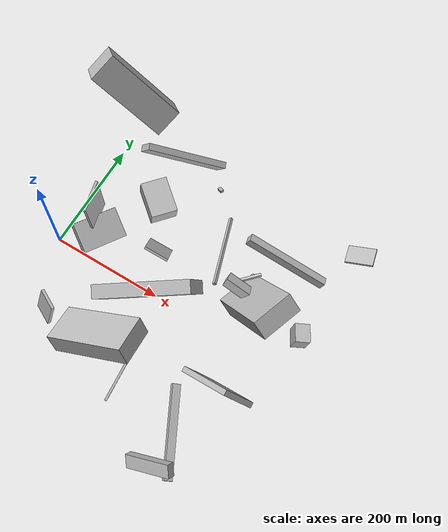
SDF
<sdf version="1.6">
 <world name="default">
  <scene>
   <sky><clouds><speed>12</speed></clouds></sky>
   <ambient>0.4 0.4 0.4 1</ambient>
   <background>0.7 0.7 0.7 1</background>
   <shadows>1</shadows>
  </scene>
  <gravity>0 0 -9.8066</gravity>
  <magnetic_field>6e-06 2.3e-05 -4.2e-05</magnetic_field>
  <physics default="0" name="default_physics" type="ode">
   <ode>
    <solver>
     <type>quick</type>
     <iters>10</iters>
     <sor>1.0</sor>
     <use_dynamic_moi_rescaling>0</use_dynamic_moi_rescaling>
    </solver>
    <constraints>
     <cfm>0</cfm>
     <erp>0.2</erp>
     <contact_max_correcting_vel>100</contact_max_correcting_vel>
     <contact_surface_layer>0.001</contact_surface_layer>
    </constraints>
   </ode>
   <max_step_size>0.004</max_step_size>
   <real_time_factor>1</real_time_factor>
   <real_time_update_rate>250</real_time_update_rate>
  </physics>
  <light name="sun" type="directional">
   <pose>0 0 10 0 0 0</pose>
   <diffuse>0.8 0.8 0.8 1</diffuse>
   <specular>0.2 0.2 0.2 1</specular>
   <attenuation>
    <range>1000</range>
    <constant>0.9</constant>
    <linear>0.01</linear>
    <quadratic>0.001</quadratic>
   </attenuation>
   <direction>-0.5 0.1 -0.9</direction>
  </light>
  <model name="building_1">
   <static>0</static>
   <pose>228.50782712403145 -99.7069918311399 80.58001226293052 -2.600759875775554 -0.9914145633186701 2.7520723081780076</pose>
   <link name="link">
    <gravity>0</gravity>
    <pose>0 0 75.0 0 0 0</pose>
    <collision name="collision"><geometry><box><size>34 67 150</size></box></geometry></collision>
    <visual name="visual">
     <cast_shadows>0</cast_shadows>
     <geometry><box><size>34 67 150</size></box></geometry>
     <material>
      <script>
       <uri>model://HANNAS_wall/materials/scripts</uri>
       <uri>model://HANNAS_wall/materials/textures</uri>
       <name>vrc/HANNAS_wall</name>
      </script>
     </material>
    </visual>
   </link>
  </model>
  <model name="building_2">
   <static>0</static>
   <pose>313.12523808422543 -114.09309398574526 26.935028764033515 1.6852489154991435 -1.1314976388735776 0.3692323295738032</pose>
   <link name="link">
    <gravity>0</gravity>
    <pose>0 0 75.0 0 0 0</pose>
    <collision name="collision"><geometry><box><size>8 14 150</size></box></geometry></collision>
    <visual name="visual">
     <cast_shadows>0</cast_shadows>
     <geometry><box><size>8 14 150</size></box></geometry>
     <material>
      <script>
       <uri>model://HANNAS_wall/materials/scripts</uri>
       <uri>model://HANNAS_wall/materials/textures</uri>
       <name>vrc/HANNAS_wall</name>
      </script>
     </material>
    </visual>
   </link>
  </model>
  <model name="building_3">
   <static>0</static>
   <pose>402.136044863617 46.29176534728611 96.78624098116423 3.0613290632788126 -0.6936211254072625 2.852033277978996</pose>
   <link name="link">
    <gravity>0</gravity>
    <pose>0 0 70.0 0 0 0</pose>
    <collision name="collision"><geometry><box><size>35 73 140</size></box></geometry></collision>
    <visual name="visual">
     <cast_shadows>0</cast_shadows>
     <geometry><box><size>35 73 140</size></box></geometry>
     <material>
      <script>
       <uri>model://HANNAS_wall/materials/scripts</uri>
       <uri>model://HANNAS_wall/materials/textures</uri>
       <name>vrc/HANNAS_wall</name>
      </script>
     </material>
    </visual>
   </link>
  </model>
  <model name="building_4">
   <static>0</static>
   <pose>53.97638780549188 72.35365126070106 118.19536404606004 2.5392077078129356 -1.35794974537868 -0.7713836601714082</pose>
   <link name="link">
    <gravity>0</gravity>
    <pose>0 0 25.0 0 0 0</pose>
    <collision name="collision"><geometry><box><size>150 4 50</size></box></geometry></collision>
    <visual name="visual">
     <cast_shadows>0</cast_shadows>
     <geometry><box><size>150 4 50</size></box></geometry>
     <material>
      <script>
       <uri>model://HANNAS_wall/materials/scripts</uri>
       <uri>model://HANNAS_wall/materials/textures</uri>
       <name>vrc/HANNAS_wall</name>
      </script>
     </material>
    </visual>
   </link>
  </model>
  <model name="building_5">
   <static>0</static>
   <pose>110.29068994062796 139.5535475372522 95.32020127405234 1.7199619675158766 0.06869982871447372 0.8920822855806897</pose>
   <link name="link">
    <gravity>0</gravity>
    <pose>0 0 30.0 0 0 0</pose>
    <collision name="collision"><geometry><box><size>44 33 60</size></box></geometry></collision>
    <visual name="visual">
     <cast_shadows>0</cast_shadows>
     <geometry><box><size>44 33 60</size></box></geometry>
     <material>
      <script>
       <uri>model://HANNAS_wall/materials/scripts</uri>
       <uri>model://HANNAS_wall/materials/textures</uri>
       <name>vrc/HANNAS_wall</name>
      </script>
     </material>
    </visual>
   </link>
  </model>
  <model name="building_6">
   <static>0</static>
   <pose>346.4212791652003 -248.26852292374633 52.10722650439477 -2.4630711130093834 0.537393049107994 -0.9527748149124886</pose>
   <link name="link">
    <gravity>0</gravity>
    <pose>0 0 6.5 0 0 0</pose>
    <collision name="collision"><geometry><box><size>22 85 13</size></box></geometry></collision>
    <visual name="visual">
     <cast_shadows>0</cast_shadows>
     <geometry><box><size>22 85 13</size></box></geometry>
     <material>
      <script>
       <uri>model://HANNAS_wall/materials/scripts</uri>
       <uri>model://HANNAS_wall/materials/textures</uri>
       <name>vrc/HANNAS_wall</name>
      </script>
     </material>
    </visual>
   </link>
  </model>
  <model name="building_7">
   <static>0</static>
   <pose>255.9798584550856 121.88669110989943 22.419570511178264 -0.8163161030855242 -0.2620827699031319 -1.2369061661339473</pose>
   <link name="link">
    <gravity>0</gravity>
    <pose>0 0 2.5 0 0 0</pose>
    <collision name="collision"><geometry><box><size>143 5 5</size></box></geometry></collision>
    <visual name="visual">
     <cast_shadows>0</cast_shadows>
     <geometry><box><size>143 5 5</size></box></geometry>
     <material>
      <script>
       <uri>model://HANNAS_wall/materials/scripts</uri>
       <uri>model://HANNAS_wall/materials/textures</uri>
       <name>vrc/HANNAS_wall</name>
      </script>
     </material>
    </visual>
   </link>
  </model>
  <model name="building_8">
   <static>0</static>
   <pose>181.7643777014365 243.1240095132053 60.532595841608476 -0.9611370804678414 -0.28435300090438953 1.9959883724791074</pose>
   <link name="link">
    <gravity>0</gravity>
    <pose>0 0 75.0 0 0 0</pose>
    <collision name="collision"><geometry><box><size>11 26 150</size></box></geometry></collision>
    <visual name="visual">
     <cast_shadows>0</cast_shadows>
     <geometry><box><size>11 26 150</size></box></geometry>
     <material>
      <script>
       <uri>model://HANNAS_wall/materials/scripts</uri>
       <uri>model://HANNAS_wall/materials/textures</uri>
       <name>vrc/HANNAS_wall</name>
      </script>
     </material>
    </visual>
   </link>
  </model>
  <model name="building_9">
   <static>0</static>
   <pose>341.33442893834876 -95.42093223972688 84.00855173920348 0.918548454759484 -0.23391376021368226 1.62346876505583</pose>
   <link name="link">
    <gravity>0</gravity>
    <pose>0 0 49.5 0 0 0</pose>
    <collision name="collision"><geometry><box><size>9 64 99</size></box></geometry></collision>
    <visual name="visual">
     <cast_shadows>0</cast_shadows>
     <geometry><box><size>9 64 99</size></box></geometry>
     <material>
      <script>
       <uri>model://HANNAS_wall/materials/scripts</uri>
       <uri>model://HANNAS_wall/materials/textures</uri>
       <name>vrc/HANNAS_wall</name>
      </script>
     </material>
    </visual>
   </link>
  </model>
  <model name="building_10">
   <static>0</static>
   <pose>88.02222566278614 -132.79844264237286 111.608320470754 1.9352595335587857 0.05338457157055781 2.657418977662906</pose>
   <link name="link">
    <gravity>0</gravity>
    <pose>0 0 2.5 0 0 0</pose>
    <collision name="collision"><geometry><box><size>36 46 5</size></box></geometry></collision>
    <visual name="visual">
     <cast_shadows>0</cast_shadows>
     <geometry><box><size>36 46 5</size></box></geometry>
     <material>
      <script>
       <uri>model://HANNAS_wall/materials/scripts</uri>
       <uri>model://HANNAS_wall/materials/textures</uri>
       <name>vrc/HANNAS_wall</name>
      </script>
     </material>
    </visual>
   </link>
  </model>
  <model name="building_11">
   <static>0</static>
   <pose>44.027773177893515 5.0575185023741795 49.42530432796817 1.7709122891077063 -0.4515891867583405 2.545409864224229</pose>
   <link name="link">
    <gravity>0</gravity>
    <pose>0 0 39.0 0 0 0</pose>
    <collision name="collision"><geometry><box><size>52 16 78</size></box></geometry></collision>
    <visual name="visual">
     <cast_shadows>0</cast_shadows>
     <geometry><box><size>52 16 78</size></box></geometry>
     <material>
      <script>
       <uri>model://HANNAS_wall/materials/scripts</uri>
       <uri>model://HANNAS_wall/materials/textures</uri>
       <name>vrc/HANNAS_wall</name>
      </script>
     </material>
    </visual>
   </link>
  </model>
  <model name="building_12">
   <static>0</static>
   <pose>67.06799422432665 250.13825604162693 107.78234544310416 0.6080024797891269 -0.6131174353864547 -0.732181633045821</pose>
   <link name="link">
    <gravity>0</gravity>
    <pose>0 0 75.0 0 0 0</pose>
    <collision name="collision"><geometry><box><size>47 51 150</size></box></geometry></collision>
    <visual name="visual">
     <cast_shadows>0</cast_shadows>
     <geometry><box><size>47 51 150</size></box></geometry>
     <material>
      <script>
       <uri>model://HANNAS_wall/materials/scripts</uri>
       <uri>model://HANNAS_wall/materials/textures</uri>
       <name>vrc/HANNAS_wall</name>
      </script>
     </material>
    </visual>
   </link>
  </model>
  <model name="building_13">
   <static>0</static>
   <pose>450.89568678619605 46.708728996921856 24.26360137458855 1.5711208680672 -0.15874952512519347 -2.627180981603595</pose>
   <link name="link">
    <gravity>0</gravity>
    <pose>0 0 15.5 0 0 0</pose>
    <collision name="collision"><geometry><box><size>25 33 31</size></box></geometry></collision>
    <visual name="visual">
     <cast_shadows>0</cast_shadows>
     <geometry><box><size>25 33 31</size></box></geometry>
     <material>
      <script>
       <uri>model://HANNAS_wall/materials/scripts</uri>
       <uri>model://HANNAS_wall/materials/textures</uri>
       <name>vrc/HANNAS_wall</name>
      </script>
     </material>
    </visual>
   </link>
  </model>
  <model name="building_14">
   <static>0</static>
   <pose>317.1735899150382 67.17059370604062 43.347329830076596 2.266013755968405 -0.25390237408581684 3.1183021209331523</pose>
   <link name="link">
    <gravity>0</gravity>
    <pose>0 0 11.5 0 0 0</pose>
    <collision name="collision"><geometry><box><size>47 15 23</size></box></geometry></collision>
    <visual name="visual">
     <cast_shadows>0</cast_shadows>
     <geometry><box><size>47 15 23</size></box></geometry>
     <material>
      <script>
       <uri>model://HANNAS_wall/materials/scripts</uri>
       <uri>model://HANNAS_wall/materials/textures</uri>
       <name>vrc/HANNAS_wall</name>
      </script>
     </material>
    </visual>
   </link>
  </model>
  <model name="building_15">
   <static>0</static>
   <pose>219.2940224385432 -35.968448894294745 120.79965588039174 -0.4466902117037907 1.2109556470688532 1.7004328098507662</pose>
   <link name="link">
    <gravity>0</gravity>
    <pose>0 0 11.0 0 0 0</pose>
    <collision name="collision"><geometry><box><size>116 150 22</size></box></geometry></collision>
    <visual name="visual">
     <cast_shadows>0</cast_shadows>
     <geometry><box><size>116 150 22</size></box></geometry>
     <material>
      <script>
       <uri>model://HANNAS_wall/materials/scripts</uri>
       <uri>model://HANNAS_wall/materials/textures</uri>
       <name>vrc/HANNAS_wall</name>
      </script>
     </material>
    </visual>
   </link>
  </model>
  <model name="building_16">
   <static>0</static>
   <pose>441.06277340463515 224.3664450234985 31.010697842190375 -0.24457769622625597 1.2611237183024624 0.0016295258715697029</pose>
   <link name="link">
    <gravity>0</gravity>
    <pose>0 0 24.0 0 0 0</pose>
    <collision name="collision"><geometry><box><size>4 32 48</size></box></geometry></collision>
    <visual name="visual">
     <cast_shadows>0</cast_shadows>
     <geometry><box><size>4 32 48</size></box></geometry>
     <material>
      <script>
       <uri>model://HANNAS_wall/materials/scripts</uri>
       <uri>model://HANNAS_wall/materials/textures</uri>
       <name>vrc/HANNAS_wall</name>
      </script>
     </material>
    </visual>
   </link>
  </model>
  <model name="building_17">
   <static>0</static>
   <pose>362.18698899260363 155.252044252369 56.23155189251884 -0.965939377537175 1.0504283608739686 -2.333364380576161</pose>
   <link name="link">
    <gravity>0</gravity>
    <pose>0 0 7.0 0 0 0</pose>
    <collision name="collision"><geometry><box><size>14 150 14</size></box></geometry></collision>
    <visual name="visual">
     <cast_shadows>0</cast_shadows>
     <geometry><box><size>14 150 14</size></box></geometry>
     <material>
      <script>
       <uri>model://HANNAS_wall/materials/scripts</uri>
       <uri>model://HANNAS_wall/materials/textures</uri>
       <name>vrc/HANNAS_wall</name>
      </script>
     </material>
    </visual>
   </link>
  </model>
  <model name="building_18">
   <static>0</static>
   <pose>169.0174177719099 52.121954846321074 43.41908097750597 -2.84924875622959 -0.5826497848571008 1.4866457331929281</pose>
   <link name="link">
    <gravity>0</gravity>
    <pose>0 0 30.5 0 0 0</pose>
    <collision name="collision"><geometry><box><size>4 44 61</size></box></geometry></collision>
    <visual name="visual">
     <cast_shadows>0</cast_shadows>
     <geometry><box><size>4 44 61</size></box></geometry>
     <material>
      <script>
       <uri>model://HANNAS_wall/materials/scripts</uri>
       <uri>model://HANNAS_wall/materials/textures</uri>
       <name>vrc/HANNAS_wall</name>
      </script>
     </material>
    </visual>
   </link>
  </model>
  <model name="building_19">
   <static>0</static>
   <pose>335.6860706112411 117.35383986724317 28.157870549528237 1.9791957072682593 1.3185359518563284 -0.3817139348526188</pose>
   <link name="link">
    <gravity>0</gravity>
    <pose>0 0 25.0 0 0 0</pose>
    <collision name="collision"><geometry><box><size>4 5 50</size></box></geometry></collision>
    <visual name="visual">
     <cast_shadows>0</cast_shadows>
     <geometry><box><size>4 5 50</size></box></geometry>
     <material>
      <script>
       <uri>model://HANNAS_wall/materials/scripts</uri>
       <uri>model://HANNAS_wall/materials/textures</uri>
       <name>vrc/HANNAS_wall</name>
      </script>
     </material>
    </visual>
   </link>
  </model>
  <model name="building_20">
   <static>0</static>
   <pose>228.23279643631773 -156.59195537482896 25.736503701828383 2.982929198980302 0.43226664177496416 -1.5841727860635755</pose>
   <link name="link">
    <gravity>0</gravity>
    <pose>0 0 2.0 0 0 0</pose>
    <collision name="collision"><geometry><box><size>80 4 4</size></box></geometry></collision>
    <visual name="visual">
     <cast_shadows>0</cast_shadows>
     <geometry><box><size>80 4 4</size></box></geometry>
     <material>
      <script>
       <uri>model://HANNAS_wall/materials/scripts</uri>
       <uri>model://HANNAS_wall/materials/textures</uri>
       <name>vrc/HANNAS_wall</name>
      </script>
     </material>
    </visual>
   </link>
  </model>
  <model name="building_21">
   <static>0</static>
   <pose>193.53039498162155 216.56708931720905 23.64539114088867 -1.7125054367264747 -0.5197471101893385 -0.4893389802116466</pose>
   <link name="link">
    <gravity>0</gravity>
    <pose>0 0 3.0 0 0 0</pose>
    <collision name="collision"><geometry><box><size>11 4 6</size></box></geometry></collision>
    <visual name="visual">
     <cast_shadows>0</cast_shadows>
     <geometry><box><size>11 4 6</size></box></geometry>
     <material>
      <script>
       <uri>model://HANNAS_wall/materials/scripts</uri>
       <uri>model://HANNAS_wall/materials/textures</uri>
       <name>vrc/HANNAS_wall</name>
      </script>
     </material>
    </visual>
   </link>
  </model>
 </world>
</sdf>
